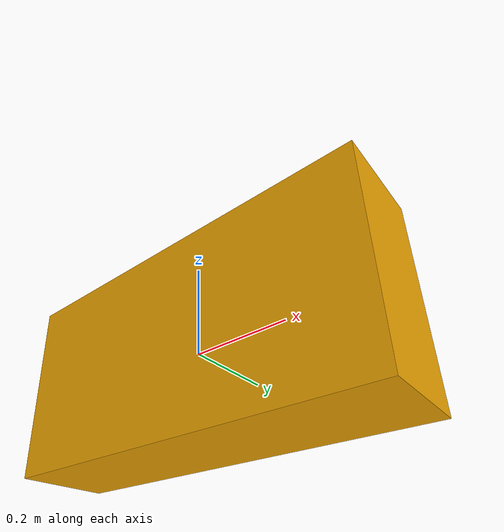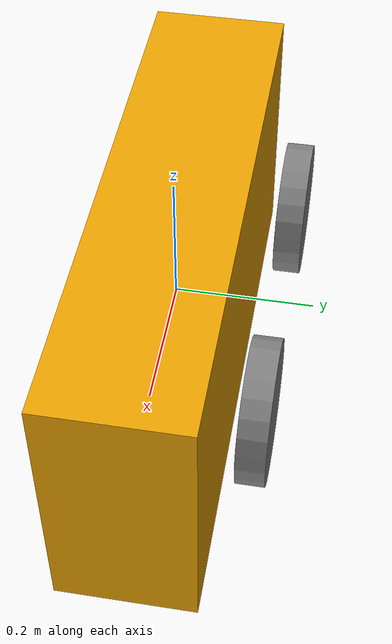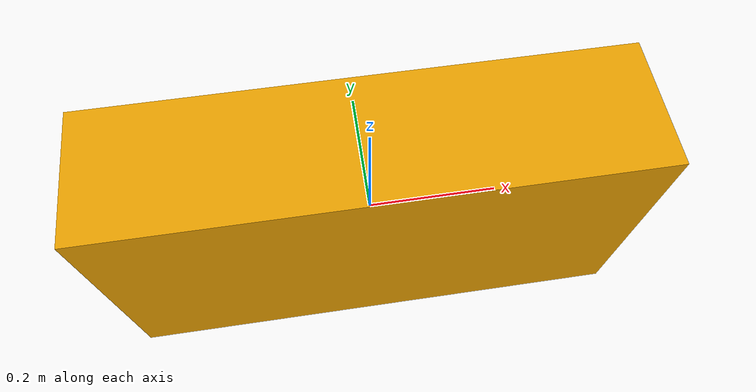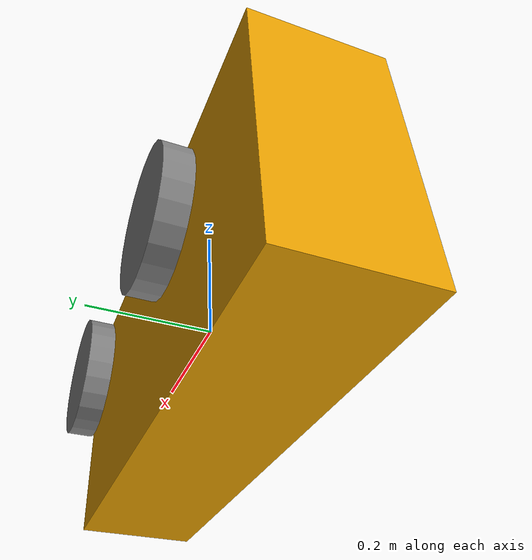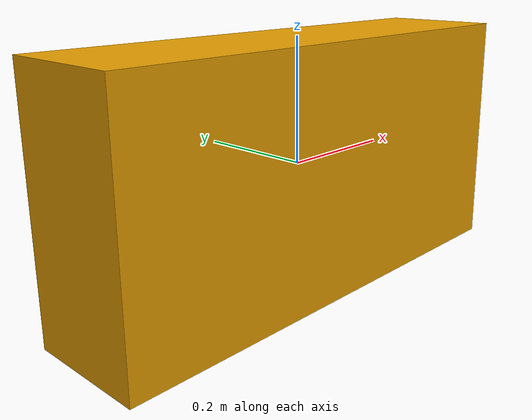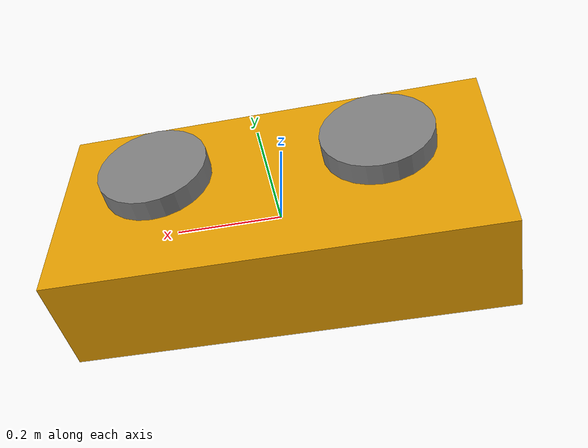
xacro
<?xml version="1.0"?>

<robot name="simple_bot" xmlns:xacro="http://ros.org/wiki/xacro">
    <xacro:property name="base_width" value="0.2" />
    <xacro:property name="base_length" value="0.8" />
    <xacro:property name="base_height" value="0.4" />
    <xacro:property name="wheel_radius" value="0.1" />
    <xacro:property name="wheel_width" value="0.04" />

    <link name="base_link">
        <inertial>
            <origin xyz="0 0 0" rpy="${pi/2} 0 ${pi/2}"/>
            <mass value="1"/>
            <inertia ixx="0.5" ixy="0.0" ixz="0.0" iyy="0.5" iyz="0.0" izz="0.5"/>
        </inertial>
        <visual>
            <geometry>
                <box size="${base_length} ${base_width} ${base_height}" />
            </geometry>
        </visual>
        <collision>
            <geometry>
                <box size="${base_length} ${base_width} ${base_height}" />
            </geometry>
        </collision>
    </link>

    <link name="right_wheel_link">
        <inertial>
            <origin xyz="0 0 0" rpy="${pi/2} 0 ${pi/2}"/>
            <mass value="1"/>
            <inertia ixx="0.5" ixy="0.0" ixz="0.0" iyy="0.5" iyz="0.0" izz="0.5"/>
        </inertial>
        <visual>
            <origin xyz="0 0 0" rpy="${pi/2} 0 0" />
            <geometry>
                <cylinder radius="${wheel_radius}" length="${wheel_width}" />
            </geometry>
            <material name="Gray">
                <color rgba="0.5 0.5 0.5 1.0" />
            </material>
        </visual>
        <collision>
            <origin xyz="0 0 0" rpy="${pi/2} 0 0" />
            <geometry>
                <cylinder radius="${wheel_radius}" length="${wheel_width}" />
            </geometry>
        </collision>
    </link>

    <joint name="right_wheel_link_joint" type="prismatic">
        <parent link="base_link" />
        <child link="right_wheel_link" />
        <origin xyz="-0.2 ${(base_width/2) + (wheel_radius/2)} 0" rpy="0 0 0" />
        <axis xyz="1 0 0" />
        <limit velocity="1" effort="1" lower="-0.4" upper="0.04" />
    </joint>

    <link name="left_wheel_link">
        <inertial>
            <origin xyz="0 0 0" rpy="${pi/2} 0 ${pi/2}"/>
            <mass value="1"/>
            <inertia ixx="0.5" ixy="0.0" ixz="0.0" iyy="0.5" iyz="0.0" izz="0.5"/>
        </inertial>
        <visual>
            <origin xyz="0 0 0" rpy="${pi/2} 0 0" />
            <geometry>
                <cylinder radius="${wheel_radius}" length="${wheel_width}" />
            </geometry>
            <material name="Gray">
                <color rgba="0.5 0.5 0.5 1.0" />
            </material>
        </visual>
        <collision>
            <origin xyz="0 0 0" rpy="${pi/2} 0 0" />
            <geometry>
                <cylinder radius="${wheel_radius}" length="${wheel_width}" />
            </geometry>
        </collision>
    </link>

    <joint name="left_wheel_link_joint" type="fixed">
        <parent link="base_link" />
        <child link="left_wheel_link" />
        <origin xyz="0.2 ${(base_width/2) + (wheel_radius/2)} 0" rpy="0 0 0" />
    </joint>
</robot>
